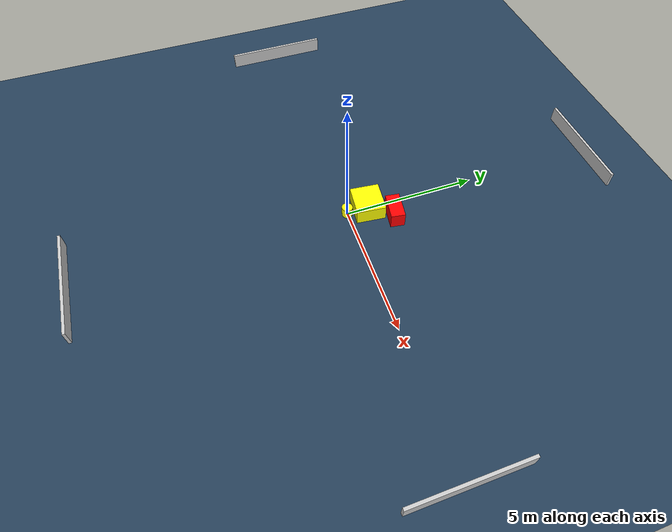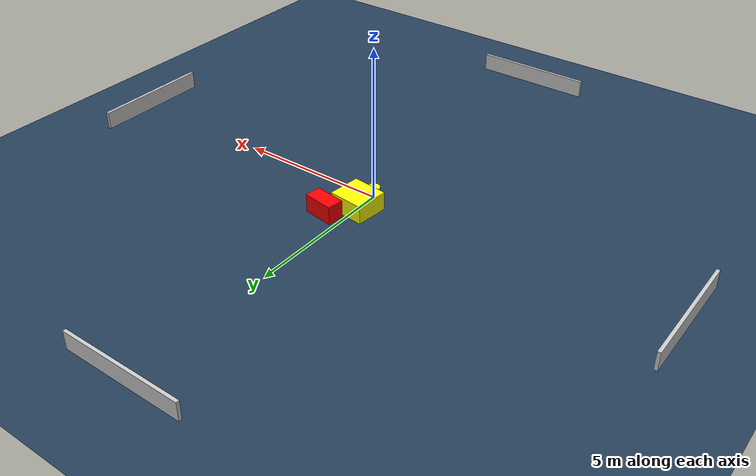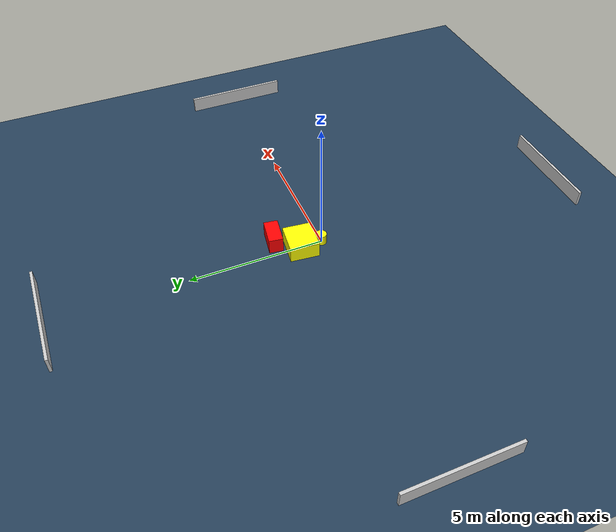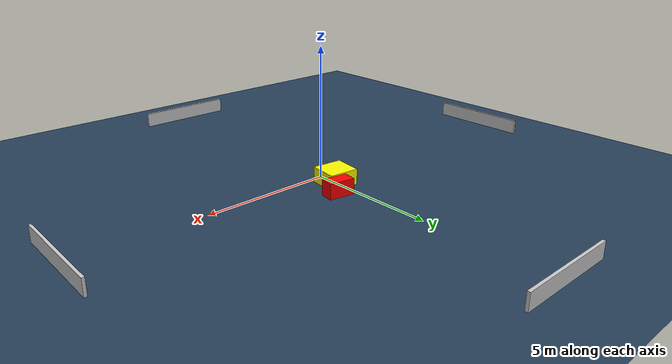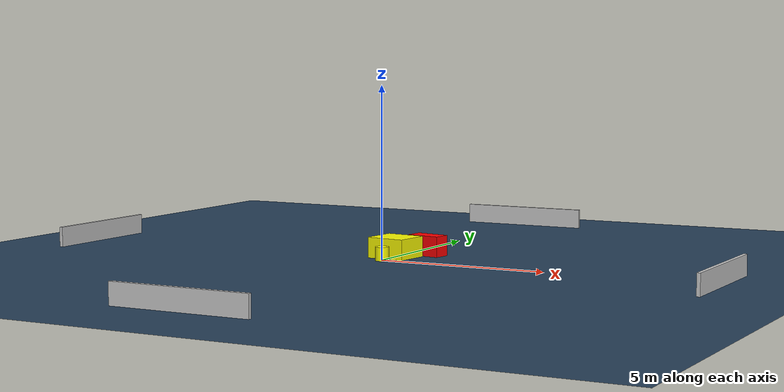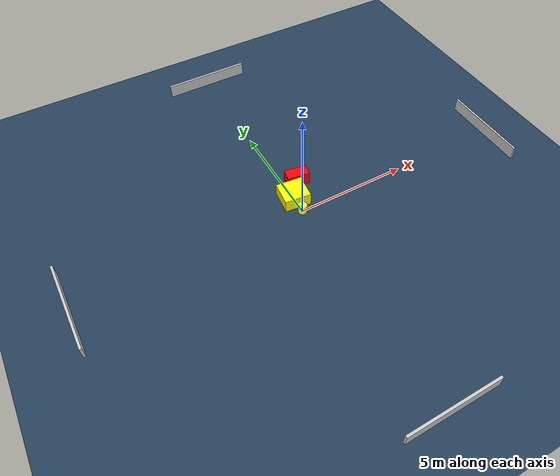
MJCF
<?xml version="1.0" ?>
<mujoco model="generated_environment">
  <option timestep="0.01" integrator="RK4" cone="elliptic"/>
  <default>
    <geom density="1"/>
  </default>
  <asset>
    <texture builtin="gradient" height="3072" name="skybox" rgb1="0.3 0.5 0.7" rgb2="0 0 0" type="skybox" width="512"/>
    <texture builtin="checker" height="300" name="groundplane" rgb1="0.2 0.3 0.4" rgb2="0.1 0.2 0.3" type="2d" width="300"/>
    <material name="groundplane" reflectance="0.2" texrepeat="5 5" texture="groundplane"/>
  </asset>
  <worldbody>
    <light dir="0 0 -1" directional="true" pos="0 0 1.5"/>
    <geom condim="3" friction="0.5 0.005 0.001" material="groundplane" name="floor" pos="0 0 0" size="0 0 0.05" type="plane"/>
    <body name="walls">
      <geom name="wall_1" condim="4" pos="-10.0 0.0 0.3" rgba="0.800000011920929 0.800000011920929 0.800000011920929 1.0" size="0.05 2.0 0.3" type="box"/>
      <geom name="wall_2" condim="4" pos="10.0 0.0 0.3" rgba="0.800000011920929 0.800000011920929 0.800000011920929 1.0" size="0.05 2.0 0.3" type="box"/>
      <geom name="wall_3" condim="4" pos="0.0 -10.0 0.3" rgba="0.800000011920929 0.800000011920929 0.800000011920929 1.0" size="2.0 0.05 0.3" type="box"/>
      <geom name="wall_4" condim="4" pos="0.0 10.0 0.3" rgba="0.800000011920929 0.800000011920929 0.800000011920929 1.0" size="2.0 0.05 0.3" type="box"/>
    </body>
    <body name="robot">
      <joint name="joint_x" type="slide" pos="0 0 0" axis="1 0 0"/>
      <joint name="joint_y" type="slide" pos="0 0 0" axis="0 1 0"/>
      <geom name="robot" type="cylinder" pos="0.0 0.0 0.2" size="0.2 0.2 0.0" mass="5.0" friction="1.0 0.005 0.0001" condim="4" rgba="1.0 1.0 0.0 1.0"/>
    </body>
    <body name="obstacle_1_movable">
      <geom name="obstacle_1_movable" condim="4" pos="0.002035783890642322 0.8022207181222265 0.3" euler="0 0 263.8601252954984" friction="0.0 0.005 0.001" rgba="1.0 1.0 0.0 1.0" size="0.5439233792128405 0.5834078538264087 0.3" type="box" mass="0.1"/>
      <joint type="free"/>
    </body>
    <body name="obstacle_2_static">
      <geom name="obstacle_2_static" condim="4" pos="0.6401888056545844 1.630987235254964 0.3" euler="0 0 261.47917657573805" friction="0.0 0.005 0.001" rgba="1.0 0.0 0.0 1.0" size="0.26357076070930263 0.5041514231768566 0.3" type="box"/>
    </body>
  </worldbody>
  <actuator>
    <motor name="actuator_x" joint="joint_x" gear="1" ctrlrange="-1 1"/>
    <motor name="actuator_y" joint="joint_y" gear="1" ctrlrange="-1 1"/>
  </actuator>
</mujoco>
